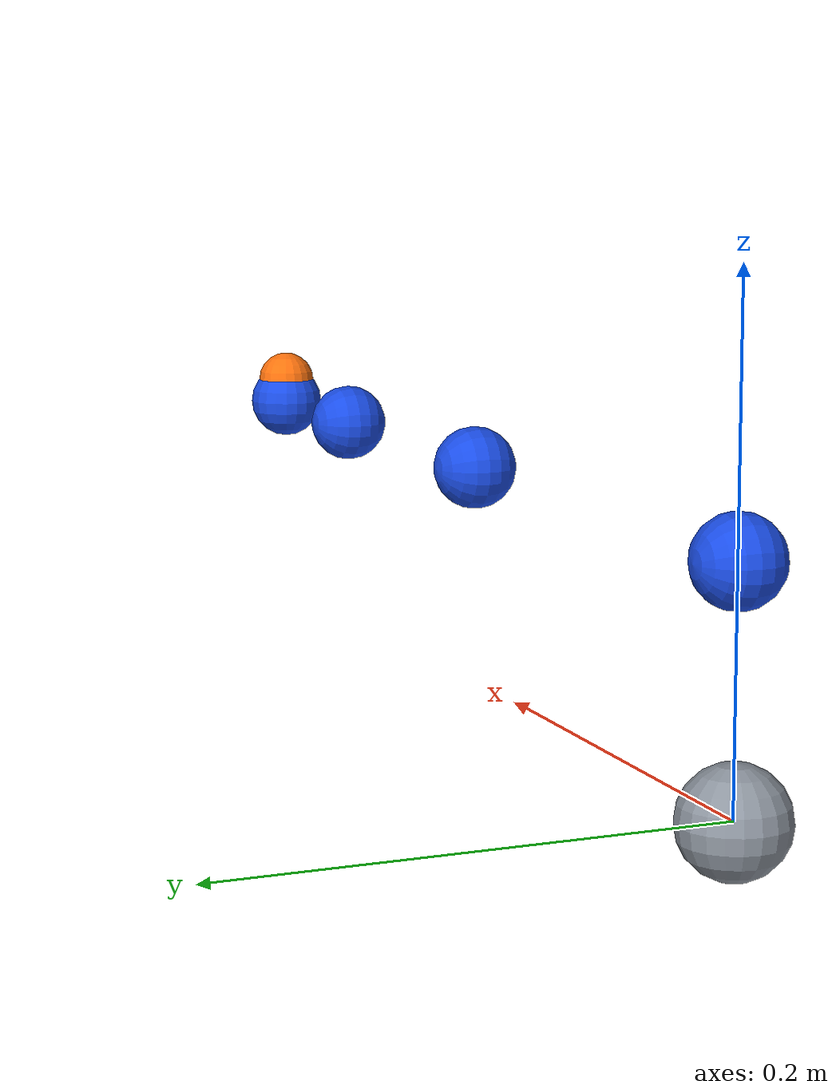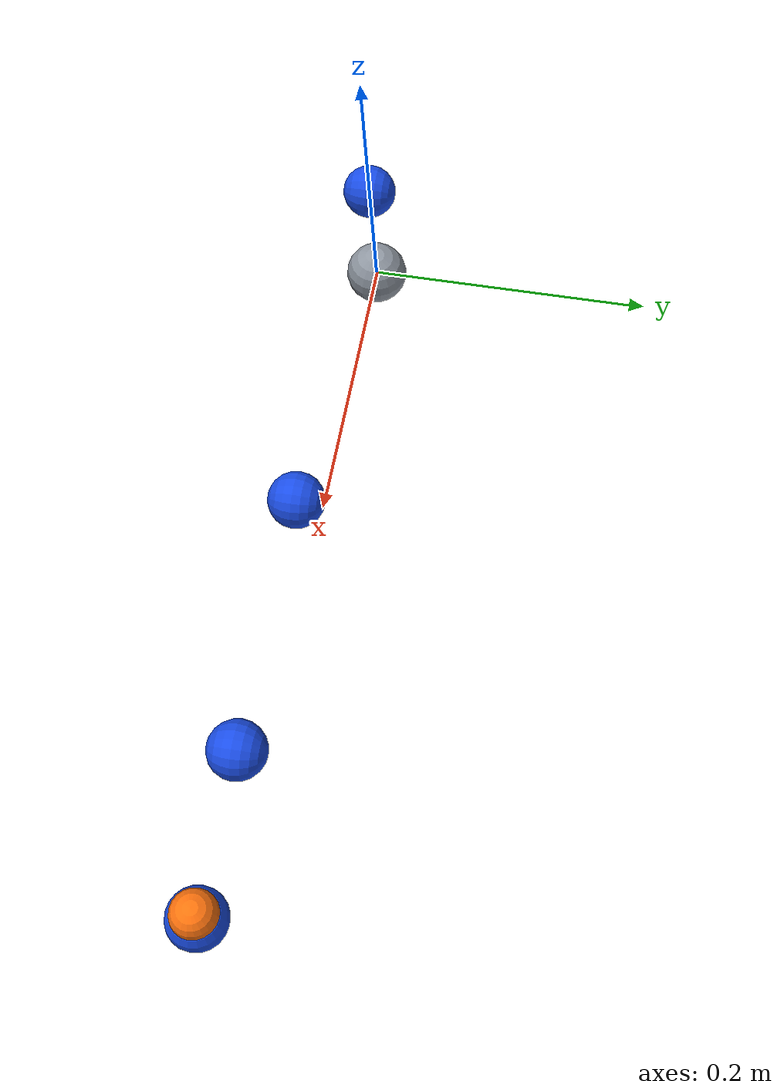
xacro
<?xml version="1.0"?>
<robot xmlns:xacro="http://www.ros.org/wiki/xacro" name="dh_robot">
  <material name="gray">
    <color rgba="0.55 0.58 0.62 1.0"/>
  </material>
  <material name="blue">
    <color rgba="0.1 0.3 0.9 1.0"/>
  </material>
  <material name="orange">
    <color rgba="1.0 0.45 0.05 1.0"/>
  </material>

  <xacro:macro name="small_sphere" params="name radius color">
    <link name="${name}">
      <visual>
        <geometry>
          <sphere radius="${radius}"/>
        </geometry>
        <material name="${color}"/>
      </visual>
    </link>
  </xacro:macro>

  <xacro:macro name="dh_fixed" params="parent child a d alpha">
    <joint name="${parent}_to_${child}_dh_offset" type="fixed">
      <parent link="${parent}"/>
      <child link="${child}"/>
      <origin xyz="${a} 0 ${d}" rpy="${alpha} 0 0"/>
    </joint>
  </xacro:macro>

  <link name="world"/>

  <xacro:small_sphere name="base_link" radius="0.022" color="gray"/>
  <joint name="world_to_base" type="fixed">
    <parent link="world"/>
    <child link="base_link"/>
    <origin xyz="0 0 0" rpy="0 0 0"/>
  </joint>

  <link name="theta1_link"/>
  <joint name="q0" type="revolute">
    <parent link="base_link"/>
    <child link="theta1_link"/>
    <origin xyz="0 0 0" rpy="0 0 0"/>
    <axis xyz="0 0 1"/>
    <limit lower="-3.141592653589793" upper="3.141592653589793" effort="1" velocity="1"/>
  </joint>
  <xacro:small_sphere name="frame1" radius="0.018" color="blue"/>
  <xacro:dh_fixed parent="theta1_link" child="frame1" a="0" d="0.095" alpha="1.5707963267948966"/>

  <link name="theta2_link"/>
  <joint name="q1" type="revolute">
    <parent link="frame1"/>
    <child link="theta2_link"/>
    <origin xyz="0 0 0" rpy="0 0 0"/>
    <axis xyz="0 0 1"/>
    <limit lower="-2.0943951023931953" upper="2.0943951023931953" effort="1" velocity="1"/>
  </joint>
  <xacro:small_sphere name="frame2" radius="0.018" color="blue"/>
  <xacro:dh_fixed parent="theta2_link" child="frame2" a="0.244" d="0" alpha="0"/>

  <link name="theta3_link"/>
  <joint name="q2_clockwise" type="revolute">
    <parent link="frame2"/>
    <child link="theta3_link"/>
    <origin xyz="0 0 0" rpy="0 0 0"/>
    <axis xyz="0 0 -1"/>
    <limit lower="-2.0943951023931953" upper="2.0943951023931953" effort="1" velocity="1"/>
  </joint>
  <xacro:small_sphere name="frame3" radius="0.018" color="blue"/>
  <xacro:dh_fixed parent="theta3_link" child="frame3" a="0.1628" d="0" alpha="0"/>

  <link name="theta4_link"/>
  <joint name="q3_clockwise" type="revolute">
    <parent link="frame3"/>
    <child link="theta4_link"/>
    <origin xyz="0 0 0" rpy="0 0 0"/>
    <axis xyz="0 0 -1"/>
    <limit lower="-2.0943951023931953" upper="2.0943951023931953" effort="1" velocity="1"/>
  </joint>
  <xacro:small_sphere name="frame4" radius="0.018" color="blue"/>
  <xacro:dh_fixed parent="theta4_link" child="frame4" a="0.096" d="0" alpha="-1.5707963267948966"/>

  <xacro:small_sphere name="tool0" radius="0.014" color="orange"/>
  <joint name="tool_offset" type="fixed">
    <parent link="frame4"/>
    <child link="tool0"/>
    <origin xyz="0 0 0.011" rpy="0 0 0"/>
  </joint>
</robot>
